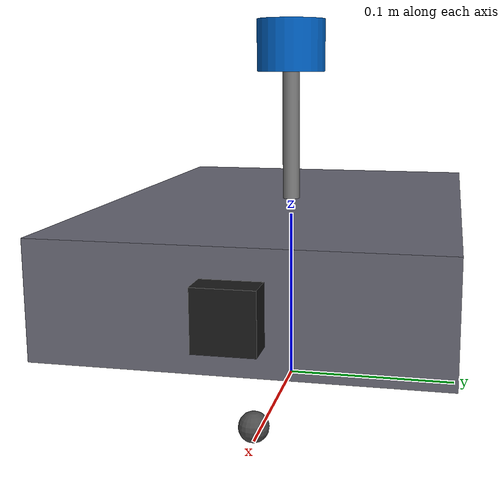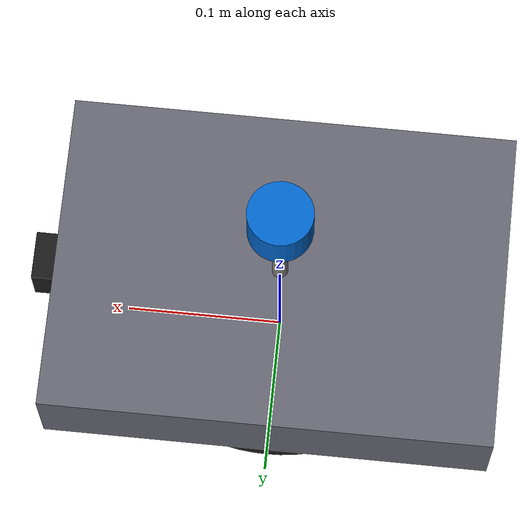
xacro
<?xml version="1.0"?>
<robot name="aigc_robot" xmlns:xacro="http://www.ros.org/wiki/xacro">

  <!-- ============================================================
       Centralized model parameters (temporary test values).
       ============================================================ -->

  <!-- Body (chassis) -->
  <xacro:property name="body_length" value="0.28"/>
  <xacro:property name="body_width"  value="0.20"/>
  <xacro:property name="body_height" value="0.06"/>
  <xacro:property name="body_z"      value="0.08"/>   <!-- body center height above ground -->
  <xacro:property name="body_mass"   value="2.0"/>

  <!-- Drive wheels -->
  <xacro:property name="wheel_radius"     value="0.035"/>
  <xacro:property name="wheel_width"      value="0.02"/>
  <xacro:property name="wheel_separation" value="0.16"/> <!-- left/right wheel center distance -->
  <xacro:property name="wheel_x"          value="0.0"/>
  <xacro:property name="wheel_z"          value="0.035"/> <!-- = wheel_radius -->
  <xacro:property name="wheel_mass"       value="0.05"/>

  <!-- Caster supports (low-friction skids, not driven) -->
  <xacro:property name="caster_radius"  value="0.008"/>
  <xacro:property name="caster_z"       value="0.008"/>
  <xacro:property name="caster_x_front" value="0.10"/>
  <xacro:property name="caster_x_rear"  value="-0.10"/>
  <xacro:property name="caster_mass"    value="0.01"/>

  <!-- Camera (front-facing) -->
  <xacro:property name="camera_x" value="0.14"/>
  <xacro:property name="camera_y" value="0.0"/>
  <xacro:property name="camera_z" value="0.08"/>

  <!-- Lidar (2D laser, scan plane ~0.20 m above ground) -->
  <xacro:property name="lidar_x" value="0.0"/>
  <xacro:property name="lidar_y" value="0.0"/>
  <xacro:property name="lidar_z" value="0.20"/>

  <!-- ============================================================
       Base footprint (virtual frame on the ground)
       ============================================================ -->
  <link name="base_footprint"/>

  <!-- ============================================================
       Base link (chassis body)
       ============================================================ -->
  <link name="base_link">
    <visual>
      <origin xyz="0 0 0" rpy="0 0 0"/>
      <geometry>
        <box size="${body_length} ${body_width} ${body_height}"/>
      </geometry>
      <material name="chassis_grey">
        <color rgba="0.4 0.4 0.45 1"/>
      </material>
    </visual>
    <collision>
      <origin xyz="0 0 0" rpy="0 0 0"/>
      <geometry>
        <box size="${body_length} ${body_width} ${body_height}"/>
      </geometry>
    </collision>
    <inertial>
      <mass value="${body_mass}"/>
      <!-- solid box 0.28 x 0.20 x 0.06, m = 2.0 kg -->
      <inertia ixx="0.007267" ixy="0" ixz="0"
               iyy="0.013667" iyz="0"
               izz="0.019733"/>
    </inertial>
  </link>

  <!-- fixed: base_footprint -> base_link -->
  <joint name="base_joint" type="fixed">
    <parent link="base_footprint"/>
    <child link="base_link"/>
    <origin xyz="0 0 ${body_z}" rpy="0 0 0"/>
  </joint>

  <!-- ============================================================
       Drive wheels (cylinder axis along y, rotate about y)
       ============================================================ -->
  <xacro:macro name="drive_wheel" params="name y">
    <link name="${name}">
      <visual>
        <origin xyz="0 0 0" rpy="1.57079632679 0 0"/>
        <geometry>
          <cylinder radius="${wheel_radius}" length="${wheel_width}"/>
        </geometry>
        <material name="wheel_black">
          <color rgba="0.1 0.1 0.1 1"/>
        </material>
      </visual>
      <collision>
        <origin xyz="0 0 0" rpy="1.57079632679 0 0"/>
        <geometry>
          <cylinder radius="${wheel_radius}" length="${wheel_width}"/>
        </geometry>
      </collision>
      <inertial>
        <mass value="${wheel_mass}"/>
        <!-- solid cylinder r=0.035, l=0.02, m=0.05, rotation about y -->
        <inertia ixx="0.00001698" ixy="0" ixz="0"
                 iyy="0.00003063" iyz="0"
                 izz="0.00001698"/>
      </inertial>
    </link>

    <joint name="${name}_joint" type="continuous">
      <parent link="base_link"/>
      <child link="${name}"/>
      <origin xyz="${wheel_x} ${y} ${wheel_z - body_z}" rpy="0 0 0"/>
      <axis xyz="0 1 0"/>
      <limit effort="10" velocity="20"/>
    </joint>
  </xacro:macro>

  <!-- left wheel at +y, right wheel at -y -->
  <xacro:drive_wheel name="left_wheel"  y="${wheel_separation/2}"/>
  <xacro:drive_wheel name="right_wheel" y="${-wheel_separation/2}"/>

  <!-- ============================================================
       Caster supports (low-friction, non-driven)
       ============================================================ -->
  <xacro:macro name="caster" params="name x">
    <link name="${name}">
      <visual>
        <geometry>
          <sphere radius="${caster_radius}"/>
        </geometry>
        <material name="caster_grey">
          <color rgba="0.3 0.3 0.3 1"/>
        </material>
      </visual>
      <collision>
        <geometry>
          <sphere radius="${caster_radius}"/>
        </geometry>
      </collision>
      <inertial>
        <mass value="${caster_mass}"/>
        <!-- solid sphere r=0.008, m=0.01 -->
        <inertia ixx="0.00000026" ixy="0" ixz="0"
                 iyy="0.00000026" iyz="0"
                 izz="0.00000026"/>
      </inertial>
    </link>

    <joint name="${name}_joint" type="fixed">
      <parent link="base_link"/>
      <child link="${name}"/>
      <origin xyz="${x} 0 ${caster_z - body_z}" rpy="0 0 0"/>
    </joint>

    <!-- low friction so the skids do not resist turning -->
    <gazebo reference="${name}">
      <mu1>0.01</mu1>
      <mu2>0.01</mu2>
      <kp>1000000.0</kp>
      <kd>1.0</kd>
    </gazebo>
  </xacro:macro>

  <xacro:caster name="caster_front" x="${caster_x_front}"/>
  <xacro:caster name="caster_rear"  x="${caster_x_rear}"/>

  <!-- ============================================================
       Camera (front-facing)
       ============================================================ -->
  <link name="camera_link">
    <visual>
      <geometry>
        <box size="0.03 0.03 0.03"/>
      </geometry>
      <material name="camera_dark">
        <color rgba="0.1 0.1 0.1 1"/>
      </material>
    </visual>
    <collision>
      <geometry>
        <box size="0.03 0.03 0.03"/>
      </geometry>
    </collision>
    <inertial>
      <mass value="0.05"/>
      <inertia ixx="0.0000075" ixy="0" ixz="0"
               iyy="0.0000075" iyz="0"
               izz="0.0000075"/>
    </inertial>
  </link>

  <joint name="camera_joint" type="fixed">
    <parent link="base_link"/>
    <child link="camera_link"/>
    <origin xyz="${camera_x} ${camera_y} ${camera_z - body_z}" rpy="0 0 0"/>
  </joint>

  <!-- optical frame: z forward, x right, y down (REP-103) -->
  <link name="camera_optical_frame"/>
  <joint name="camera_optical_joint" type="fixed">
    <parent link="camera_link"/>
    <child link="camera_optical_frame"/>
    <origin xyz="0 0 0" rpy="-1.57079632679 0 -1.57079632679"/>
  </joint>

  <!-- ============================================================
       Lidar (2D laser, scan plane ~0.20 m above ground)
       ============================================================ -->

  <!-- thin mast connecting the body to the lidar (keeps model connected) -->
  <link name="laser_mast">
    <visual>
      <geometry>
        <cylinder radius="0.005" length="0.09"/>
      </geometry>
      <material name="mast_grey">
        <color rgba="0.5 0.5 0.5 1"/>
      </material>
    </visual>
    <collision>
      <geometry>
        <cylinder radius="0.005" length="0.09"/>
      </geometry>
    </collision>
    <inertial>
      <mass value="0.02"/>
      <inertia ixx="0.00001363" ixy="0" ixz="0"
               iyy="0.00001363" iyz="0"
               izz="0.00000025"/>
    </inertial>
  </link>

  <joint name="laser_mast_joint" type="fixed">
    <parent link="base_link"/>
    <child link="laser_mast"/>
    <origin xyz="0 0 0.075" rpy="0 0 0"/>
  </joint>

  <link name="laser_link">
    <visual>
      <geometry>
        <cylinder radius="0.02" length="0.03"/>
      </geometry>
      <material name="laser_blue">
        <color rgba="0 0.4 0.8 1"/>
      </material>
    </visual>
    <collision>
      <geometry>
        <cylinder radius="0.02" length="0.03"/>
      </geometry>
    </collision>
    <inertial>
      <mass value="0.05"/>
      <inertia ixx="0.00000875" ixy="0" ixz="0"
               iyy="0.00001000" iyz="0"
               izz="0.00000875"/>
    </inertial>
  </link>

  <joint name="laser_joint" type="fixed">
    <parent link="base_link"/>
    <child link="laser_link"/>
    <origin xyz="${lidar_x} ${lidar_y} ${lidar_z - body_z}" rpy="0 0 0"/>
  </joint>

  <!-- ============================================================
       Gazebo plugins
       ============================================================ -->

  <!-- Differential drive -->
  <gazebo>
    <plugin name="diff_drive_controller" filename="libgazebo_ros_diff_drive.so">
      <robotNamespace>/</robotNamespace>
      <updateRate>30.0</updateRate>

      <leftJoint>left_wheel_joint</leftJoint>
      <rightJoint>right_wheel_joint</rightJoint>

      <wheelSeparation>${wheel_separation}</wheelSeparation>
      <wheelDiameter>${2*wheel_radius}</wheelDiameter>
      <wheelTorque>5.0</wheelTorque>
      <wheelAcceleration>1.0</wheelAcceleration>

      <commandTopic>/cmd_vel</commandTopic>
      <odometryTopic>/odom</odometryTopic>
      <odometryFrame>odom</odometryFrame>
      <robotBaseFrame>base_footprint</robotBaseFrame>
      <odometrySource>world</odometrySource>

      <publishTf>true</publishTf>
      <publishOdomTF>true</publishOdomTF>
      <publishWheelTF>false</publishWheelTF>
      <publishWheelJointState>true</publishWheelJointState>
    </plugin>
  </gazebo>

  <!-- Camera -->
  <gazebo reference="camera_link">
    <sensor type="camera" name="usb_cam_sensor">
      <always_on>true</always_on>
      <update_rate>15.0</update_rate>
      <camera name="usb_cam">
        <horizontal_fov>1.0471975512</horizontal_fov>
        <image>
          <width>640</width>
          <height>480</height>
          <format>R8G8B8</format>
        </image>
        <clip>
          <near>0.05</near>
          <far>10.0</far>
        </clip>
      </camera>
      <plugin name="usb_cam_controller" filename="libgazebo_ros_camera.so">
        <robotNamespace>/</robotNamespace>
        <cameraName>usb_cam</cameraName>
        <imageTopicName>image_raw</imageTopicName>
        <cameraInfoTopicName>camera_info</cameraInfoTopicName>
        <frameName>camera_optical_frame</frameName>
        <updateRate>0.0</updateRate>
      </plugin>
    </sensor>
  </gazebo>

  <!-- Laser -->
  <gazebo reference="laser_link">
    <sensor type="ray" name="laser_sensor">
      <pose>0 0 0 0 0 0</pose>
      <visualize>false</visualize>
      <update_rate>10.0</update_rate>
      <ray>
        <scan>
          <horizontal>
            <samples>360</samples>
            <resolution>1</resolution>
            <min_angle>-3.14159265359</min_angle>
            <max_angle>3.14159265359</max_angle>
          </horizontal>
        </scan>
        <range>
          <min>0.05</min>
          <max>8.0</max>
          <resolution>0.01</resolution>
        </range>
      </ray>
      <plugin name="laser_controller" filename="libgazebo_ros_laser.so">
        <robotNamespace>/</robotNamespace>
        <topicName>/scan</topicName>
        <frameName>laser_link</frameName>
      </plugin>
    </sensor>
  </gazebo>

</robot>
